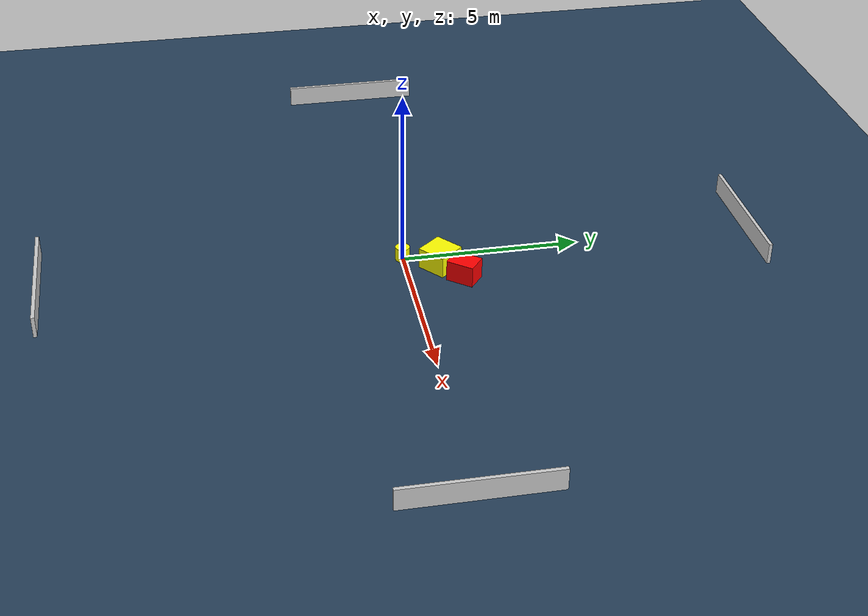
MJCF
<?xml version="1.0" ?>
<mujoco model="generated_environment">
  <option timestep="0.01" integrator="RK4" cone="elliptic"/>
  <default>
    <geom density="1"/>
  </default>
  <asset>
    <texture builtin="gradient" height="3072" name="skybox" rgb1="0.3 0.5 0.7" rgb2="0 0 0" type="skybox" width="512"/>
    <texture builtin="checker" height="300" name="groundplane" rgb1="0.2 0.3 0.4" rgb2="0.1 0.2 0.3" type="2d" width="300"/>
    <material name="groundplane" reflectance="0.2" texrepeat="5 5" texture="groundplane"/>
  </asset>
  <worldbody>
    <light dir="0 0 -1" directional="true" pos="0 0 1.5"/>
    <geom condim="3" friction="0.5 0.005 0.001" material="groundplane" name="floor" pos="0 0 0" size="0 0 0.05" type="plane"/>
    <body name="walls">
      <geom name="wall_1" condim="4" pos="-10.0 0.0 0.3" rgba="0.800000011920929 0.800000011920929 0.800000011920929 1.0" size="0.05 2.0 0.3" type="box"/>
      <geom name="wall_2" condim="4" pos="10.0 0.0 0.3" rgba="0.800000011920929 0.800000011920929 0.800000011920929 1.0" size="0.05 2.0 0.3" type="box"/>
      <geom name="wall_3" condim="4" pos="0.0 -10.0 0.3" rgba="0.800000011920929 0.800000011920929 0.800000011920929 1.0" size="2.0 0.05 0.3" type="box"/>
      <geom name="wall_4" condim="4" pos="0.0 10.0 0.3" rgba="0.800000011920929 0.800000011920929 0.800000011920929 1.0" size="2.0 0.05 0.3" type="box"/>
    </body>
    <body name="robot">
      <joint name="joint_x" type="slide" pos="0 0 0" axis="1 0 0"/>
      <joint name="joint_y" type="slide" pos="0 0 0" axis="0 1 0"/>
      <geom name="robot" type="cylinder" pos="0.0 0.0 0.2" size="0.2 0.2 0.0" mass="5.0" friction="1.0 0.005 0.0001" condim="4" rgba="1.0 1.0 0.0 1.0"/>
    </body>
    <body name="obstacle_1_movable">
      <geom name="obstacle_1_movable" condim="4" pos="0.5449161975380091 0.9626037081076724 0.3" euler="0 0 39.98839218779226" friction="0.0 0.005 0.001" rgba="1.0 1.0 0.0 1.0" size="0.42079567569148224 0.41505995152145814 0.3" type="box" mass="0.1"/>
      <joint type="free"/>
    </body>
    <body name="obstacle_2_static">
      <geom name="obstacle_2_static" condim="4" pos="1.2562065545365269 1.4918143803940207 0.3" euler="0 0 231.66372427726745" friction="0.0 0.005 0.001" rgba="1.0 0.0 0.0 1.0" size="0.39140573529361056 0.2995508028518926 0.3" type="box"/>
    </body>
  </worldbody>
  <actuator>
    <motor name="actuator_x" joint="joint_x" gear="1" ctrlrange="-1 1"/>
    <motor name="actuator_y" joint="joint_y" gear="1" ctrlrange="-1 1"/>
  </actuator>
</mujoco>
